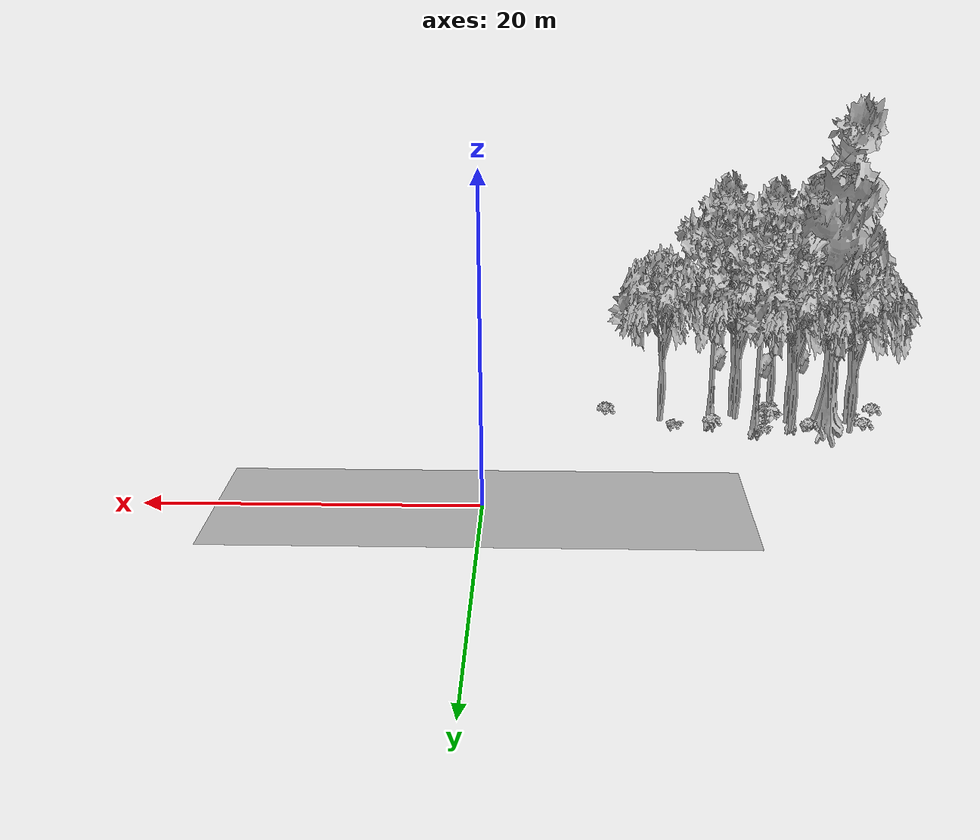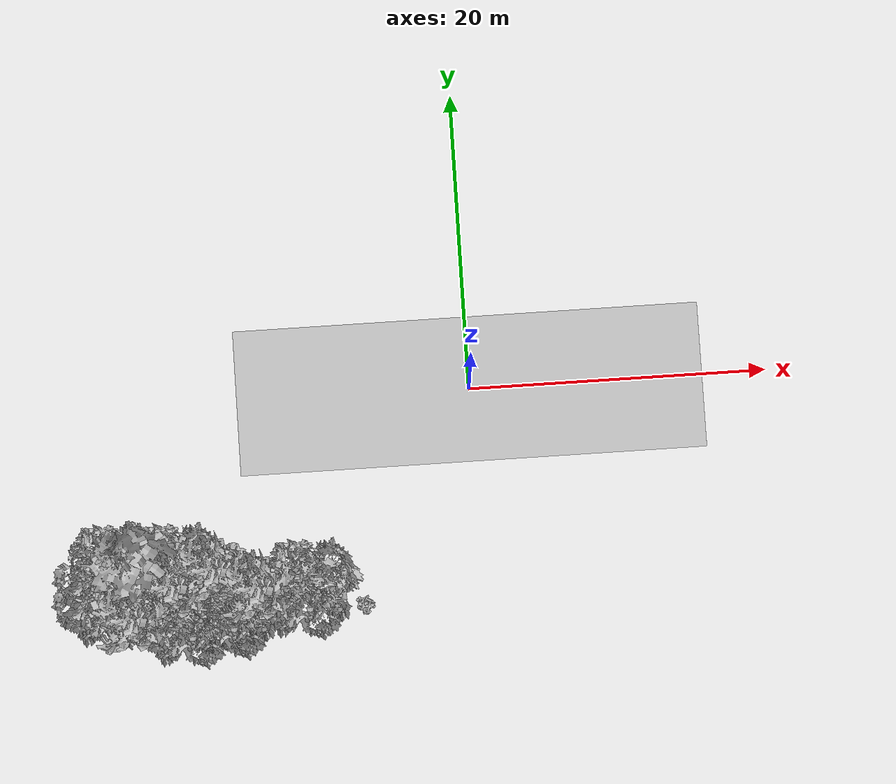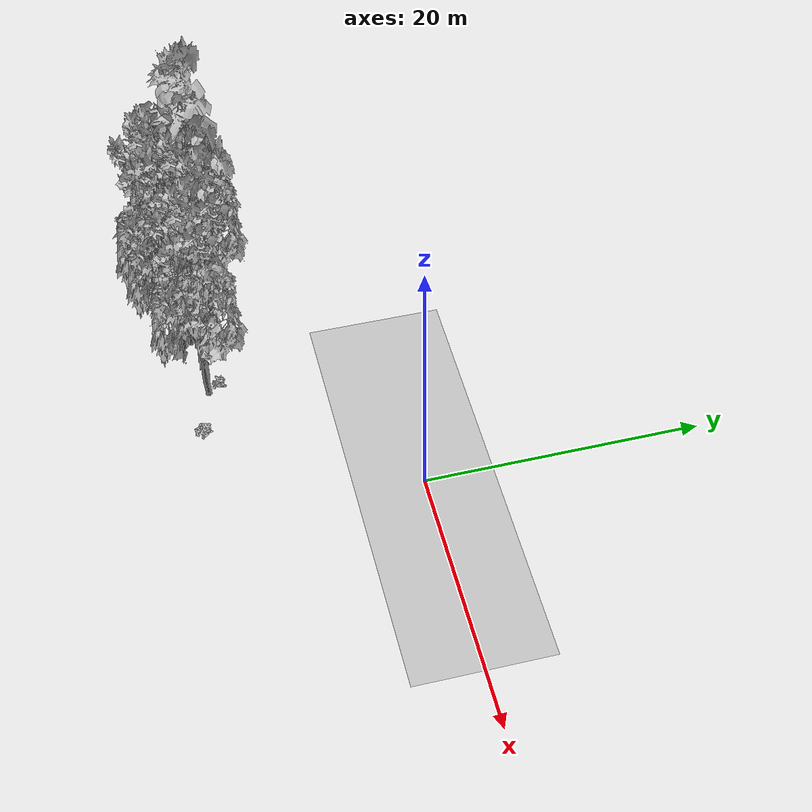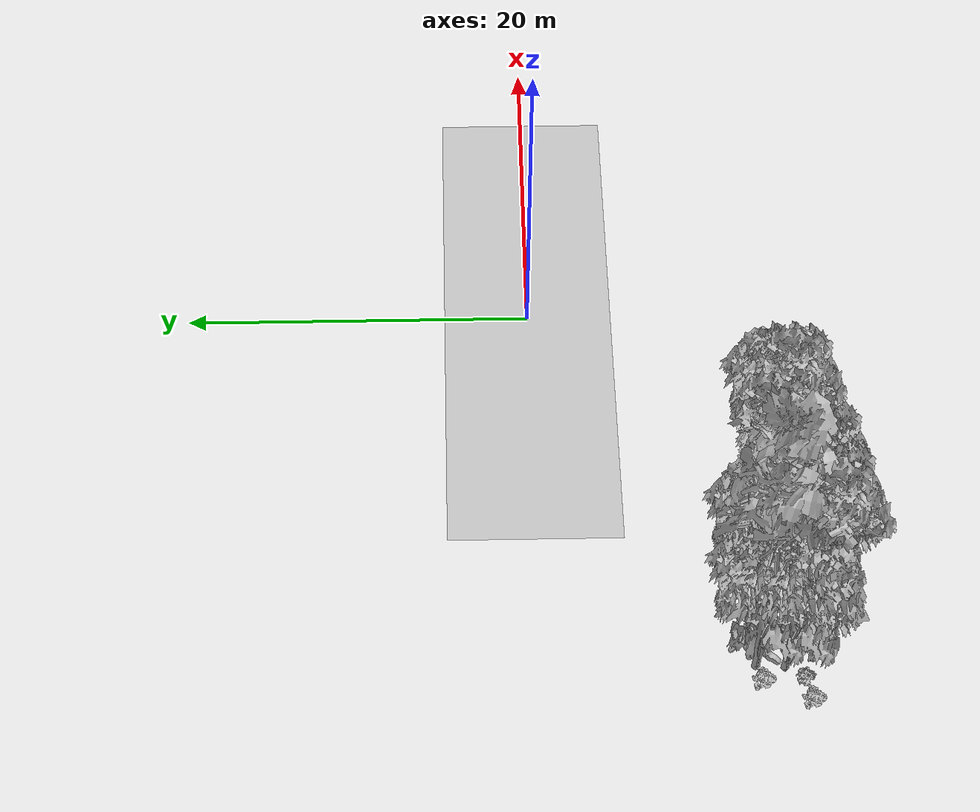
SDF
<sdf version="1.7">
 <world name="default">
  <model name="ground_plane">
   <static>1</static>
   <link name="link">
    <collision name="collision">
     <geometry><plane><normal>0 0 1</normal><size>100 100</size></plane></geometry>
     <surface><contact><ode><min_depth>0.01</min_depth><max_vel>0</max_vel></ode></contact></surface>
    </collision>
    <visual name="grass">
     <cast_shadows>0</cast_shadows>
     <geometry>
      <mesh>
       <scale>0.5814285714285714 0.18142857142857144 0.1</scale>
       <uri>file://grass_plane/meshes/grass_plane.dae</uri>
      </mesh>
     </geometry>
    </visual>
   </link>
  </model>
  <model name="Tree 99">
   <static>1</static>
   <pose>-20.254806320163787 -13.023973888211152 0 1.57079 -0 0</pose>
   <link name="link">
    <collision name="collision">
     <geometry><mesh><scale>3.5 5 3.5</scale><uri>model://tree_2/meshes/tree_2.obj</uri></mesh></geometry>
    </collision>
    <visual name="visual">
     <geometry><mesh><scale>3.5 5 3.5</scale><uri>model://tree_2/meshes/tree_2.obj</uri></mesh></geometry>
    </visual>
   </link>
  </model>
  <model name="Tree 108">
   <static>1</static>
   <pose>-24.316642564788783 -12.979481025246804 0 1.57079 -0 0</pose>
   <link name="link">
    <collision name="collision">
     <geometry><mesh><scale>3.5 5 3.5</scale><uri>model://tree_2/meshes/tree_2.obj</uri></mesh></geometry>
    </collision>
    <visual name="visual">
     <geometry><mesh><scale>3.5 5 3.5</scale><uri>model://tree_2/meshes/tree_2.obj</uri></mesh></geometry>
    </visual>
   </link>
  </model>
  <model name="Tree 120">
   <static>1</static>
   <pose>-22.560422103364278 -11.726994085615651 0 1.57079 -0 0</pose>
   <link name="link">
    <collision name="collision">
     <geometry><mesh><scale>3.5 5 3.5</scale><uri>model://tree_4/meshes/tree_4.obj</uri></mesh></geometry>
    </collision>
    <visual name="visual">
     <geometry><mesh><scale>3.5 5 3.5</scale><uri>model://tree_4/meshes/tree_4.obj</uri></mesh></geometry>
    </visual>
   </link>
  </model>
  <model name="Tree 124">
   <static>1</static>
   <pose>-23.132905386196786 -14.594266209488264 0 1.57079 -0 0</pose>
   <link name="link">
    <collision name="collision">
     <geometry><mesh><scale>3.5 5 3.5</scale><uri>model://tree_9/meshes/tree_9.obj</uri></mesh></geometry>
    </collision>
    <visual name="visual">
     <geometry><mesh><scale>3.5 5 3.5</scale><uri>model://tree_9/meshes/tree_9.obj</uri></mesh></geometry>
    </visual>
   </link>
  </model>
  <model name="Tree 162">
   <static>1</static>
   <pose>-20.433198957654056 -12.640573220027598 0 1.57079 -0 0</pose>
   <link name="link">
    <collision name="collision">
     <geometry><mesh><scale>3.5 5 3.5</scale><uri>model://tree_9/meshes/tree_9.obj</uri></mesh></geometry>
    </collision>
    <visual name="visual">
     <geometry><mesh><scale>3.5 5 3.5</scale><uri>model://tree_9/meshes/tree_9.obj</uri></mesh></geometry>
    </visual>
   </link>
  </model>
  <model name="Tree 175">
   <static>1</static>
   <pose>-11.625388038615377 -13.19191445413625 0 1.57079 -0 0</pose>
   <link name="link">
    <collision name="collision">
     <geometry><mesh><scale>3.5 5 3.5</scale><uri>model://tree_2/meshes/tree_2.obj</uri></mesh></geometry>
    </collision>
    <visual name="visual">
     <geometry><mesh><scale>3.5 5 3.5</scale><uri>model://tree_2/meshes/tree_2.obj</uri></mesh></geometry>
    </visual>
   </link>
  </model>
  <model name="Tree 191">
   <static>1</static>
   <pose>-16.85447130276486 -13.663039738916519 0 1.57079 -0 0</pose>
   <link name="link">
    <collision name="collision">
     <geometry><mesh><scale>3.5 5 3.5</scale><uri>model://tree_2/meshes/tree_2.obj</uri></mesh></geometry>
    </collision>
    <visual name="visual">
     <geometry><mesh><scale>3.5 5 3.5</scale><uri>model://tree_2/meshes/tree_2.obj</uri></mesh></geometry>
    </visual>
   </link>
  </model>
  <model name="Tree 279">
   <static>1</static>
   <pose>-14.944288950756388 -13.094766481930728 0 1.57079 -0 0</pose>
   <link name="link">
    <collision name="collision">
     <geometry><mesh><scale>3.5 5 3.5</scale><uri>model://tree_9/meshes/tree_9.obj</uri></mesh></geometry>
    </collision>
    <visual name="visual">
     <geometry><mesh><scale>3.5 5 3.5</scale><uri>model://tree_9/meshes/tree_9.obj</uri></mesh></geometry>
    </visual>
   </link>
  </model>
  <model name="Tree 287">
   <static>1</static>
   <pose>-24.20294971829836 -11.423551839307148 0 1.57079 -0 0</pose>
   <link name="link">
    <collision name="collision">
     <geometry><mesh><scale>3.5 5 3.5</scale><uri>model://tree_2/meshes/tree_2.obj</uri></mesh></geometry>
    </collision>
    <visual name="visual">
     <geometry><mesh><scale>3.5 5 3.5</scale><uri>model://tree_2/meshes/tree_2.obj</uri></mesh></geometry>
    </visual>
   </link>
  </model>
  <model name="Tree 393">
   <static>1</static>
   <pose>-17.796750010152248 -11.725864898916377 0 1.57079 -0 0</pose>
   <link name="link">
    <collision name="collision">
     <geometry><mesh><scale>3.5 5 3.5</scale><uri>model://tree_9/meshes/tree_9.obj</uri></mesh></geometry>
    </collision>
    <visual name="visual">
     <geometry><mesh><scale>3.5 5 3.5</scale><uri>model://tree_9/meshes/tree_9.obj</uri></mesh></geometry>
    </visual>
   </link>
  </model>
  <model name="Tree 396">
   <static>1</static>
   <pose>-19.324000638065854 -14.582861261958158 0 1.57079 -0 0</pose>
   <link name="link">
    <collision name="collision">
     <geometry><mesh><scale>3.5 5 3.5</scale><uri>model://tree_2/meshes/tree_2.obj</uri></mesh></geometry>
    </collision>
    <visual name="visual">
     <geometry><mesh><scale>3.5 5 3.5</scale><uri>model://tree_2/meshes/tree_2.obj</uri></mesh></geometry>
    </visual>
   </link>
  </model>
  <model name="Tree 416">
   <static>1</static>
   <pose>-16.621573987470725 -14.177644309015355 0 1.57079 -0 0</pose>
   <link name="link">
    <collision name="collision">
     <geometry><mesh><scale>3.5 5 3.5</scale><uri>model://tree_2/meshes/tree_2.obj</uri></mesh></geometry>
    </collision>
    <visual name="visual">
     <geometry><mesh><scale>3.5 5 3.5</scale><uri>model://tree_2/meshes/tree_2.obj</uri></mesh></geometry>
    </visual>
   </link>
  </model>
  <model name="Tree 424">
   <static>1</static>
   <pose>-20.30219028306505 -11.609185658477742 0 1.57079 -0 0</pose>
   <link name="link">
    <collision name="collision">
     <geometry><mesh><scale>3.5 5 3.5</scale><uri>model://tree_2/meshes/tree_2.obj</uri></mesh></geometry>
    </collision>
    <visual name="visual">
     <geometry><mesh><scale>3.5 5 3.5</scale><uri>model://tree_2/meshes/tree_2.obj</uri></mesh></geometry>
    </visual>
   </link>
  </model>
  <model name="Bush 17">
   <static>1</static>
   <pose>-18.718444570743955 -12.551710555979335 0 1.57079 -0 0</pose>
   <link name="link">
    <collision name="collision">
     <geometry><mesh><scale>2 2 2</scale><uri>model://bush_1/meshes/bush_1.obj</uri></mesh></geometry>
     <surface><contact><collide_without_contact>false</collide_without_contact></contact></surface>
    </collision>
    <visual name="visual">
     <geometry><mesh><scale>2 2 2</scale><uri>model://bush_1/meshes/bush_1.obj</uri></mesh></geometry>
    </visual>
   </link>
  </model>
  <model name="Bush 92">
   <static>1</static>
   <pose>-12.437299580584309 -12.332981608622017 0 1.57079 -0 0</pose>
   <link name="link">
    <collision name="collision">
     <geometry><mesh><scale>2 2 2</scale><uri>model://bush_2/meshes/bush_2.obj</uri></mesh></geometry>
     <surface><contact><collide_without_contact>false</collide_without_contact></contact></surface>
    </collision>
    <visual name="visual">
     <geometry><mesh><scale>2 2 2</scale><uri>model://bush_2/meshes/bush_2.obj</uri></mesh></geometry>
    </visual>
   </link>
  </model>
  <model name="Bush 112">
   <static>1</static>
   <pose>-25.03519123458367 -11.705399231202506 0 1.57079 -0 0</pose>
   <link name="link">
    <collision name="collision">
     <geometry><mesh><scale>2 2 2</scale><uri>model://bush_3/meshes/bush_3.obj</uri></mesh></geometry>
     <surface><contact><collide_without_contact>false</collide_without_contact></contact></surface>
    </collision>
    <visual name="visual">
     <geometry><mesh><scale>2 2 2</scale><uri>model://bush_3/meshes/bush_3.obj</uri></mesh></geometry>
    </visual>
   </link>
  </model>
  <model name="Bush 117">
   <static>1</static>
   <pose>-21.369911672503612 -11.487574708851085 0 1.57079 -0 0</pose>
   <link name="link">
    <collision name="collision">
     <geometry><mesh><scale>2 2 2</scale><uri>model://bush_3/meshes/bush_3.obj</uri></mesh></geometry>
     <surface><contact><collide_without_contact>false</collide_without_contact></contact></surface>
    </collision>
    <visual name="visual">
     <geometry><mesh><scale>2 2 2</scale><uri>model://bush_3/meshes/bush_3.obj</uri></mesh></geometry>
    </visual>
   </link>
  </model>
  <model name="Bush 147">
   <static>1</static>
   <pose>-7.797155593046355 -14.069703258192753 0 1.57079 -0 0</pose>
   <link name="link">
    <collision name="collision">
     <geometry><mesh><scale>2 2 2</scale><uri>model://bush_3/meshes/bush_3.obj</uri></mesh></geometry>
     <surface><contact><collide_without_contact>false</collide_without_contact></contact></surface>
    </collision>
    <visual name="visual">
     <geometry><mesh><scale>2 2 2</scale><uri>model://bush_3/meshes/bush_3.obj</uri></mesh></geometry>
    </visual>
   </link>
  </model>
  <model name="Bush 185">
   <static>1</static>
   <pose>-14.91565411686799 -12.138337202970312 0 1.57079 -0 0</pose>
   <link name="link">
    <collision name="collision">
     <geometry><mesh><scale>2 2 2</scale><uri>model://bush_3/meshes/bush_3.obj</uri></mesh></geometry>
     <surface><contact><collide_without_contact>false</collide_without_contact></contact></surface>
    </collision>
    <visual name="visual">
     <geometry><mesh><scale>2 2 2</scale><uri>model://bush_3/meshes/bush_3.obj</uri></mesh></geometry>
    </visual>
   </link>
  </model>
  <model name="Bush 205">
   <static>1</static>
   <pose>-24.804982897002265 -14.05188453283733 0 1.57079 -0 0</pose>
   <link name="link">
    <collision name="collision">
     <geometry><mesh><scale>2 2 2</scale><uri>model://bush_2/meshes/bush_2.obj</uri></mesh></geometry>
     <surface><contact><collide_without_contact>false</collide_without_contact></contact></surface>
    </collision>
    <visual name="visual">
     <geometry><mesh><scale>2 2 2</scale><uri>model://bush_2/meshes/bush_2.obj</uri></mesh></geometry>
    </visual>
   </link>
  </model>
  <model name="Bush 265">
   <static>1</static>
   <pose>-26.20756468616556 -14.250532705103208 0 1.57079 -0 0</pose>
   <link name="link">
    <collision name="collision">
     <geometry><mesh><scale>2 2 2</scale><uri>model://bush_3/meshes/bush_3.obj</uri></mesh></geometry>
     <surface><contact><collide_without_contact>false</collide_without_contact></contact></surface>
    </collision>
    <visual name="visual">
     <geometry><mesh><scale>2 2 2</scale><uri>model://bush_3/meshes/bush_3.obj</uri></mesh></geometry>
    </visual>
   </link>
  </model>
  <model name="Bush 309">
   <static>1</static>
   <pose>-18.407435807571126 -11.671332991604045 0 1.57079 -0 0</pose>
   <link name="link">
    <collision name="collision">
     <geometry><mesh><scale>2 2 2</scale><uri>model://bush_2/meshes/bush_2.obj</uri></mesh></geometry>
     <surface><contact><collide_without_contact>false</collide_without_contact></contact></surface>
    </collision>
    <visual name="visual">
     <geometry><mesh><scale>2 2 2</scale><uri>model://bush_2/meshes/bush_2.obj</uri></mesh></geometry>
    </visual>
   </link>
  </model>
 </world>
</sdf>
